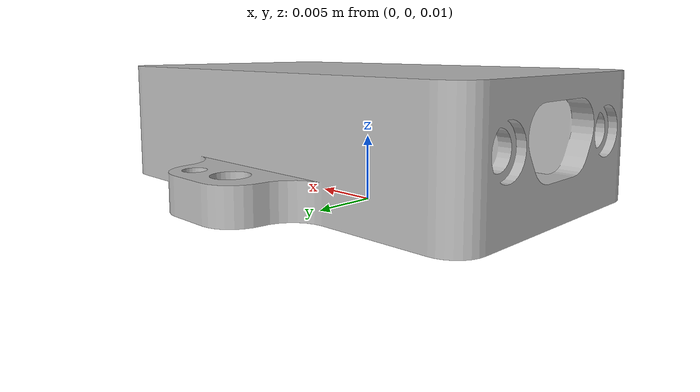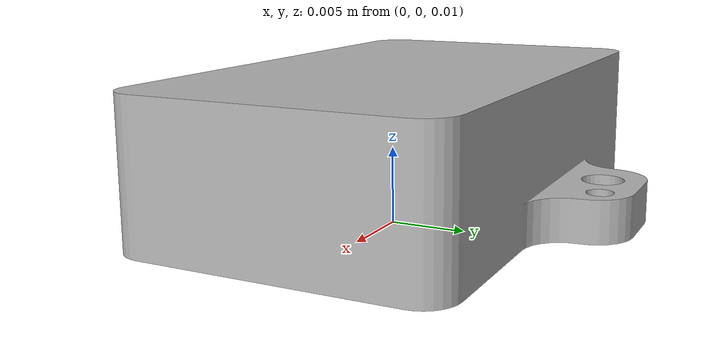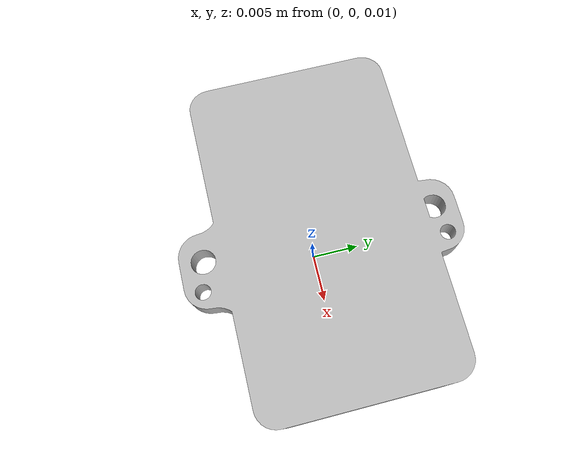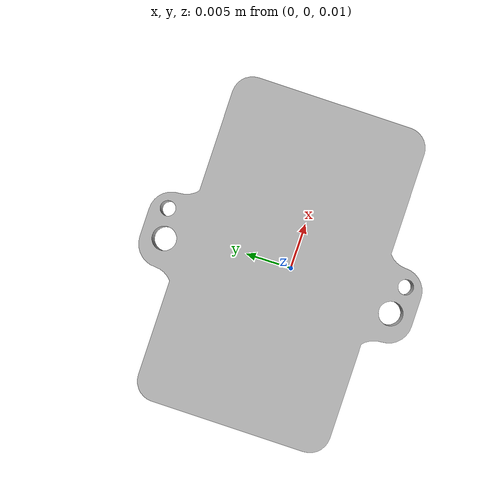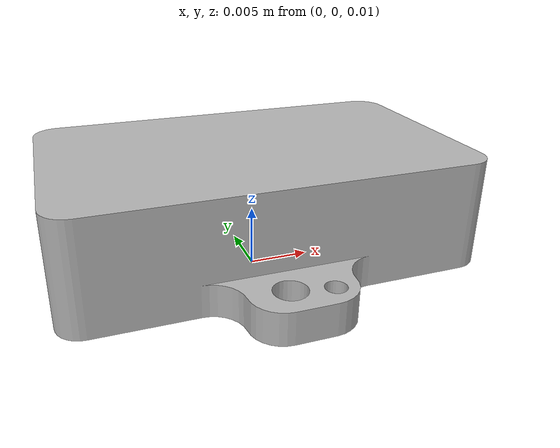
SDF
<?xml version="1.0"?>
<sdf version='1.6'>
  <model name='3dm_gx3_25'>
    <pose frame="">0 0 0.015 0 0 0</pose>
    <link name="imu_link">
      <inertial>
        <mass>0.018</mass>
        <inertia>
          <ixx>0.000001</ixx>
          <iyy>0.000001</iyy>
          <izz>0.000001</izz>
        </inertia>
        <pose frame=''>0 0 0 0 -0 0</pose>
      </inertial>
      <self_collide>0</self_collide>
      <enable_wind>0</enable_wind>
      <kinematic>0</kinematic>
      <gravity>1</gravity>
      <visual name="visual">
        <geometry>
          <mesh>
            <uri>model://3dm-gx3-25/meshes/3dm-gx3-25.dae</uri>
          </mesh>
        </geometry>
        <pose>0 0 0 0 0 -1.57</pose>
      </visual>
    </link>

    <plugin name='ImuPlugin' filename='libMaavImuPlugin.so'>
      <robotNamespace></robotNamespace>
      <linkName>imu_link</linkName>
      <imuTopic>/imu</imuTopic>
      <gyroscopeNoiseDensity>0.0003394</gyroscopeNoiseDensity>
      <gyroscopeRandomWalk>3.8785e-05</gyroscopeRandomWalk>
      <gyroscopeBiasCorrelationTime>1000.0</gyroscopeBiasCorrelationTime>
      <gyroscopeTurnOnBiasSigma>0.0087</gyroscopeTurnOnBiasSigma>
      <accelerometerNoiseDensity>0.004</accelerometerNoiseDensity>
      <accelerometerRandomWalk>0.006</accelerometerRandomWalk>
      <accelerometerBiasCorrelationTime>300.0</accelerometerBiasCorrelationTime>
      <accelerometerTurnOnBiasSigma>0.196</accelerometerTurnOnBiasSigma>

    </plugin>

  </model>
</sdf>
